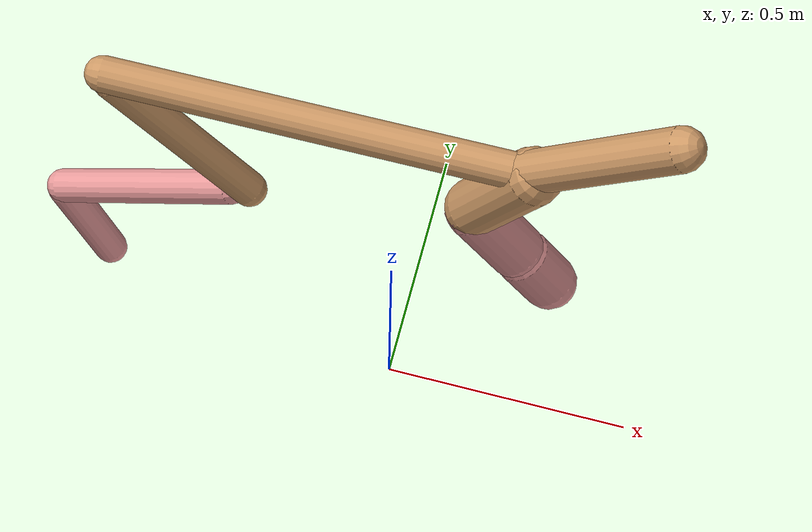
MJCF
<mujoco model="cheetah">
  <compiler angle="radian" coordinate="local" inertiafromgeom="true" settotalmass="14" />
  <default>
    <joint armature=".1" damping=".01" limited="true" solimplimit="0 .8 .03" solreflimit=".02 1" stiffness="8" />
    <geom conaffinity="0" condim="3" contype="1" friction="0.8 .1 .1" rgba="0.8 0.6 .4 1" solimp="0.0 0.8 0.01" solref="0.02 1" />
    <motor ctrllimited="true" ctrlrange="-1 1" />
  </default>
  <size nstack="300000" nuser_geom="1" />
  <option gravity="0 0 -9.81" timestep="0.01" />
  <worldbody>
    <body name="torso" pos="0.0 0.0 1.0127094450835643">
      <joint armature="0" axis="1 0 0" damping="0" limited="false" name="ignorex" pos="0 0 0" stiffness="0" type="slide" />
      <joint armature="0" axis="0 0 1" damping="0" limited="false" name="ignorez" pos="0 0 0" stiffness="0" type="slide" />
      <joint armature="0" axis="0 1 0" damping="0" limited="false" name="ignorey" pos="0 0 0" stiffness="0" type="hinge" />
      <geom fromto="-0.5 0.0 0.0 0.2370421258892344 0.0 0.0" name="torso" size="0.03182621121457746" type="capsule" />
      <geom axisangle="0 1 0 .87" name="head" pos="0.3370421258892343 0.0 0.1" size="0.03722659457834138 0.15" type="capsule" />

      <body name="bthigh" pos="-.5 0 0">
        <joint axis="0 1 0" damping="6" name="bthigh" pos="0 0 0" range="-.52 1.05" stiffness="240" type="hinge" />
        <geom axisangle="0 1 0 -3.8" name="bthigh" pos="0.12342884363100327 0.0 -0.16045749672030424" size="0.0322 0.1834261606246753" type="capsule" />
        <body name="bshin" pos="0.20685768726200654 0.0 -0.31091499344060847">
          <joint axis="0 1 0" damping="4.5" name="bshin" pos="0 0 0" range="-.785 .785" stiffness="180" type="hinge" />
          <geom axisangle="0 1 0 -2.03" name="bshin" pos="-0.17555455473286888 0.0 -0.08777727736643444" rgba="0.9 0.6 0.6 1" size="0.0322 0.18975120064621584" type="capsule" />
          <body name="bfoot" pos="-0.35110910946573776 0.0 -0.17555455473286888">
            <joint axis="0 1 0" damping="3" name="bfoot" pos="0 0 0" range="-.4 .785" stiffness="120" type="hinge" />
            <geom axisangle="0 1 0 -.27" name="bfoot" pos="0.037360373110874326 0.0 -0.12079853972516033" rgba="0.9 0.6 0.6 1" size="0.0322 0.11891075240496192" type="capsule" />
            <inertial mass="10" />
          </body>
        </body>
      </body>
      <body name="fthigh" pos="0.23704212588923435 0.0 0.0">
        <joint axis="0 1 0" damping="4.5" name="fthigh" pos="0 0 0" range="-1.5 0.8" stiffness="180" type="hinge" />
        <geom axisangle="0 1 0 .52" name="fthigh" pos="-0.04989554608158897 0.0 -0.0855352218541525" size="0.05047603523027914 0.0931" type="capsule" />
        <body name="fshin" pos="-0.09979109216317794 0.0 -0.171070443708305">
          <joint axis="0 1 0" damping="3" name="fshin" pos="0 0 0" range="-1.2 1.1" stiffness="120" type="hinge" />
          <geom axisangle="0 1 0 -.6" name="fshin" pos="0.046381400387749405 0.0 -0.06422040053688378" rgba="0.9 0.6 0.6 1" size="0.05047603523027914 0.07419999999999999" type="capsule" />
          <body name="ffoot" pos="0.09276280077549881 0.0 -0.12844080107376757">
            <joint axis="0 1 0" damping="1.5" name="ffoot" pos="0 0 0" range="-3.1 -0.3" stiffness="60" type="hinge" />
            <geom axisangle="0 1 0 -.6" name="ffoot" pos="0.033644090582416526 0.0 -0.05233525201709238" rgba="0.9 0.6 0.6 1" size="0.05047603523027914 0.049" type="capsule" />
            <inertial mass="10" />
          </body>
        </body>
      </body>
    </body>
  </worldbody>
  <actuator>
    <motor gear="120" joint="bthigh" name="bthigh" />
    <motor gear="90" joint="bshin" name="bshin" />
    <motor gear="60" joint="bfoot" name="bfoot" />
    <motor gear="120" joint="fthigh" name="fthigh" />
    <motor gear="60" joint="fshin" name="fshin" />
    <motor gear="30" joint="ffoot" name="ffoot" />
  </actuator>
</mujoco>
